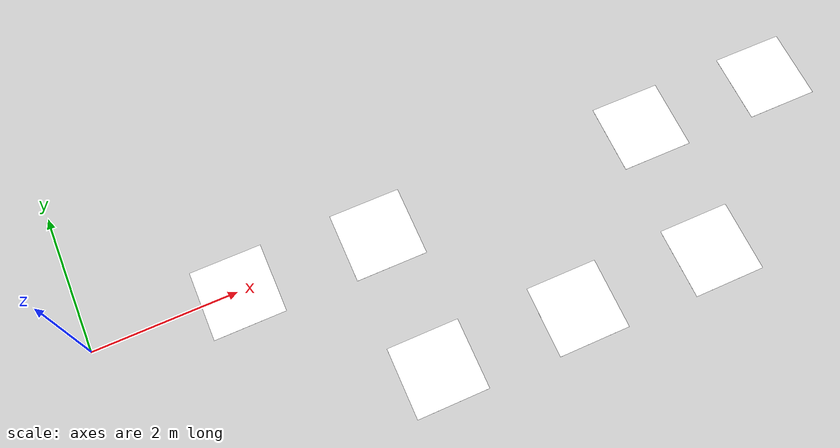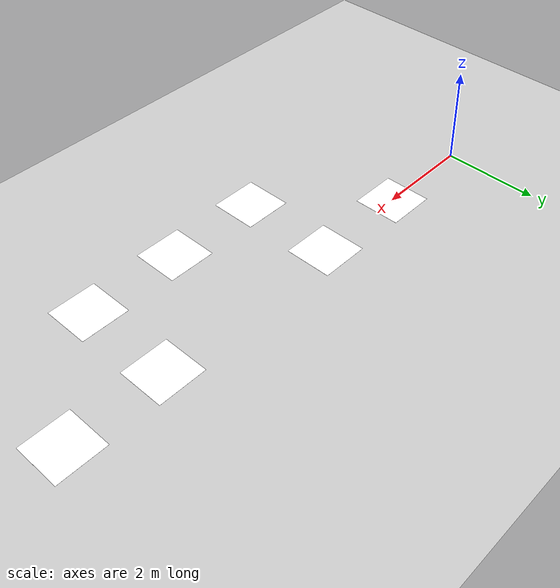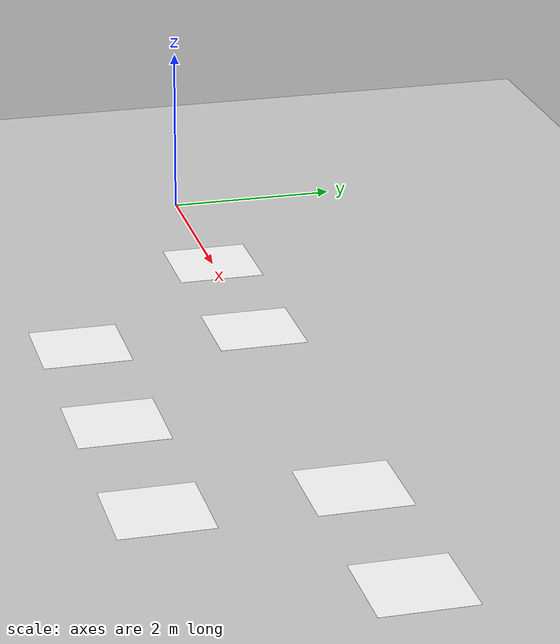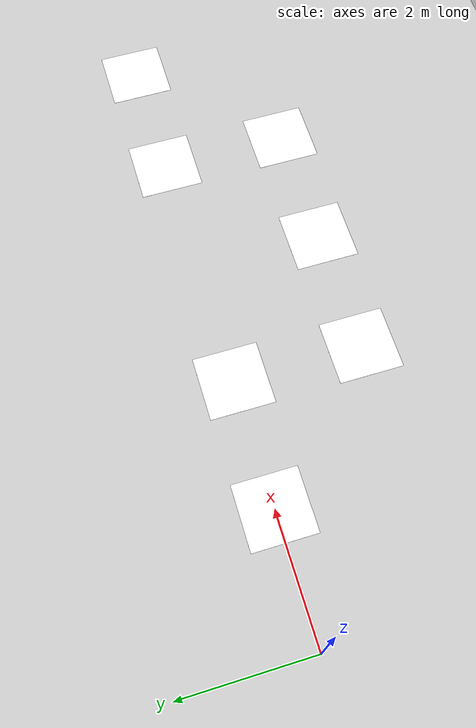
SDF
<?xml version="1.0" ?>
<sdf version="1.9">
    <world name="arrows">
        <physics type="ode">
      <max_step_size>0.004</max_step_size>
      <real_time_factor>1.0</real_time_factor>
      <real_time_update_rate>250</real_time_update_rate>
    </physics>
    <gravity>0 0 -9.8</gravity>
    <magnetic_field>6e-06 2.3e-05 -4.2e-05</magnetic_field>
    <atmosphere type="adiabatic"/>
    <scene>
      <grid>false</grid>
      <ambient>0.4 0.4 0.4 1</ambient>
      <background>0.7 0.7 0.7 1</background>
      <shadows>true</shadows>
    </scene>
    <model name="ground_plane">
      <static>true</static>
      <link name="link">
        <collision name="collision">
          <geometry>
            <plane>
              <normal>0 0 1</normal>
              <size>1 1</size>
            </plane>
          </geometry>
          <surface>
            <friction>
              <ode/>
            </friction>
            <bounce/>
            <contact/>
          </surface>
        </collision>
        <visual name="visual">
          <geometry>
            <plane>
              <normal>0 0 1</normal>
              <size>500 500</size>
            </plane>
          </geometry>
          <material>
            <ambient>0.8 0.8 0.8 1</ambient>
            <diffuse>0.8 0.8 0.8 1</diffuse>
            <specular>0.8 0.8 0.8 1</specular>
          </material>
        </visual>
        <pose>0 0 0 0 -0 0</pose>
        <inertial>
          <pose>0 0 0 0 -0 0</pose>
          <mass>1</mass>
          <inertia>
            <ixx>1</ixx>
            <ixy>0</ixy>
            <ixz>0</ixz>
            <iyy>1</iyy>
            <iyz>0</iyz>
            <izz>1</izz>
          </inertia>
        </inertial>
        <enable_wind>false</enable_wind>
      </link>
      <pose>0 0 0 0 -0 0</pose>
      <self_collide>false</self_collide>
    </model>
    <light name="sunUTC" type="directional">
      <pose>0 0 500 0 -0 0</pose>
      <cast_shadows>true</cast_shadows>
      <intensity>1</intensity>
      <direction>0.001 0.625 -0.78</direction>
      <diffuse>0.904 0.904 0.904 1</diffuse>
      <specular>0.271 0.271 0.271 1</specular>
      <attenuation>
        <range>2000</range>
        <linear>0</linear>
        <constant>1</constant>
        <quadratic>0</quadratic>
      </attenuation>
      <spot>
        <inner_angle>0</inner_angle>
        <outer_angle>0</outer_angle>
        <falloff>0</falloff>
      </spot>
    </light>
    <spherical_coordinates>
      <surface_model>EARTH_WGS84</surface_model>
      <world_frame_orientation>ENU</world_frame_orientation>
      <latitude_deg>47.397971057728974</latitude_deg>
      <longitude_deg> 8.546163739800146</longitude_deg>
      <elevation>0</elevation>
    </spherical_coordinates>

    <model name="up_arrow1">
        <static>true</static>
        <pose degrees="true">2 0 0 0 0 0</pose>
        <link name="link">
            <visual name="arrow_visual">
                <pose>0 0 0.01 0 0 0</pose>
                <geometry>
                    <box><size>1 1 0.001</size></box>
                </geometry>
                <material>
                    <ambient>1 1 1 1</ambient>
                    <diffuse>1 1 1 1</diffuse>
                    <specular>1 1 1 1</specular>
                    <pbr>
                        <metal>
                            <albedo_map>model://arrow_materials/materials/textures/arrow_block1.png</albedo_map>
                        </metal>
                    </pbr>
                </material>
            </visual>
            <collision name="collision">
                <geometry>
                    <box>
                        <size>1 1 0.2</size>
                    </box>
                </geometry>
            </collision>
        </link>
    </model>

    <model name="right_arrow1">
        <static>true</static>
        <pose degrees="true">4 0 0 0 0 -90</pose>
        <link name="link">
            <visual name="arrow_visual">
                <pose>0 0 0.01 0 0 0</pose>
                <geometry>
                    <box><size>1 1 0.001</size></box>
                </geometry>
                <material>
                    <ambient>1 1 1 1</ambient>
                    <diffuse>1 1 1 1</diffuse>
                    <specular>1 1 1 1</specular>
                    <pbr>
                        <metal>
                            <albedo_map>model://arrow_materials/materials/textures/arrow_block2.png</albedo_map>
                        </metal>
                    </pbr>
                </material>
            </visual>
            <collision name="collision">
                <geometry>
                    <box>
                        <size>1 1 0.2</size>
                    </box>
                </geometry>
            </collision>
        </link>
    </model>

    <model name="up_arrow2">
      <static>true</static>
      <pose>4 -2 0 0 0 0</pose>
      <link name="link">
            <visual name="arrow_visual">
                <pose>0 0 0.01 0 0 0</pose>
                <geometry>
                    <box><size>1 1 0.001</size></box>
                </geometry>
                <material>
                    <ambient>1 1 1 1</ambient>
                    <diffuse>1 1 1 1</diffuse>
                    <specular>1 1 1 1</specular>
                    <pbr>
                        <metal>
                            <albedo_map>model://arrow_materials/materials/textures/arrow_block3.png</albedo_map>
                        </metal>
                    </pbr>
                </material>
            </visual>
          <collision name="collision">
              <geometry>
                  <box>
                      <size>1 1 0.2</size>
                  </box>
              </geometry>
          </collision>
      </link>
    </model>

    <model name="up_arrow3">
      <static>true</static>
      <pose>6 -2 0 0 0 0</pose>
      <link name="link">
        <visual name="arrow_visual">
            <pose>0 0 0.01 0 0 0</pose>
            <geometry>
                <box><size>1 1 0.001</size></box>
            </geometry>
            <material>
                <ambient>1 1 1 1</ambient>
                <diffuse>1 1 1 1</diffuse>
                <specular>1 1 1 1</specular>
                <pbr>
                    <metal>
                        <albedo_map>model://arrow_materials/materials/textures/arrow_block4.png</albedo_map>
                    </metal>
                </pbr>
            </material>
        </visual>
          <collision name="collision">
              <geometry>
                  <box>
                      <size>1 1 0.2</size>
                  </box>
              </geometry>
          </collision>
      </link>
    </model>

    <model name="left_arrow1">
      <static>true</static>
      <pose>8 -2 0 0 0 0</pose>
      <link name="link">
        <visual name="arrow_visual">
            <pose degrees="true">0 0 0.01 0 0 90</pose>
            <geometry>
                <box><size>1 1 0.001</size></box>
            </geometry>
            <material>
                <ambient>1 1 1 1</ambient>
                <diffuse>1 1 1 1</diffuse>
                <specular>1 1 1 1</specular>
                <pbr>
                    <metal>
                        <albedo_map>model://arrow_materials/materials/textures/arrow_block5.png</albedo_map>
                    </metal>
                </pbr>
            </material>
        </visual>
          <collision name="collision">
              <geometry>
                  <box>
                      <size>1 1 0.2</size>
                  </box>
              </geometry>
          </collision>
      </link>
    </model>

    <model name="up_arrow4">
      <static>true</static>
      <pose>8 0 0 0 0 0</pose>
      <link name="link">
        <visual name="arrow_visual">
            <pose>0 0 0.01 0 0 0</pose>
            <geometry>
                <box><size>1 1 0.001</size></box>
            </geometry>
            <material>
                <ambient>1 1 1 1</ambient>
                <diffuse>1 1 1 1</diffuse>
                <specular>1 1 1 1</specular>
                <pbr>
                    <metal>
                        <albedo_map>model://arrow_materials/materials/textures/arrow_block6.png</albedo_map>
                    </metal>
                </pbr>
            </material>
        </visual>
          <collision name="collision">
              <geometry>
                  <box>
                      <size>1 1 0.2</size>
                  </box>
              </geometry>
          </collision>
      </link>
    </model>

    <model name="left_arrow2">
      <static>true</static>
      <pose>10 0 0 0 0 0</pose>
      <link name="link">
        <visual name="arrow_visual">
            <pose degrees="true">0 0 0.01 0 0 90</pose>
            <geometry>
                <box><size>1 1 0.001</size></box>
            </geometry>
            <material>
                <ambient>1 1 1 1</ambient>
                <diffuse>1 1 1 1</diffuse>
                <specular>1 1 1 1</specular>
                <pbr>
                    <metal>
                        <albedo_map>model://arrow_materials/materials/textures/arrow_block7.png</albedo_map>
                    </metal>
                </pbr>
            </material>
        </visual>
          <collision name="collision">
              <geometry>
                  <box>
                      <size>1 1 0.2</size>
                  </box>
              </geometry>
          </collision>
      </link>
    </model>

    </world>
</sdf>
